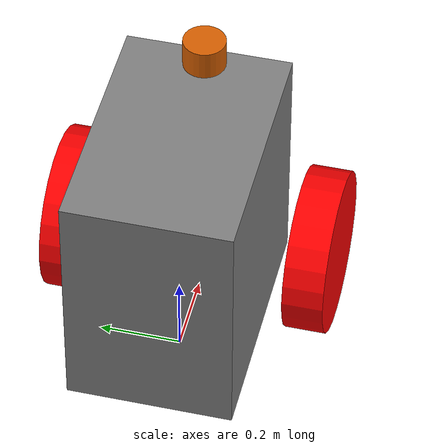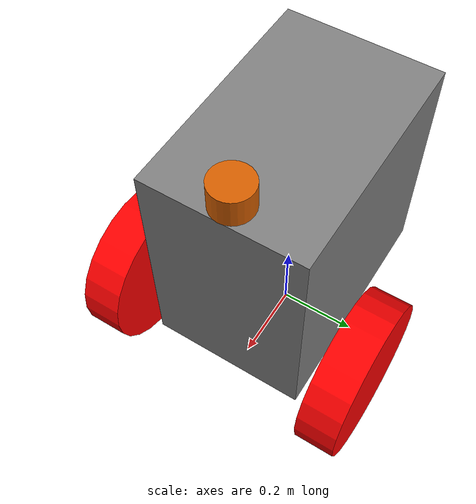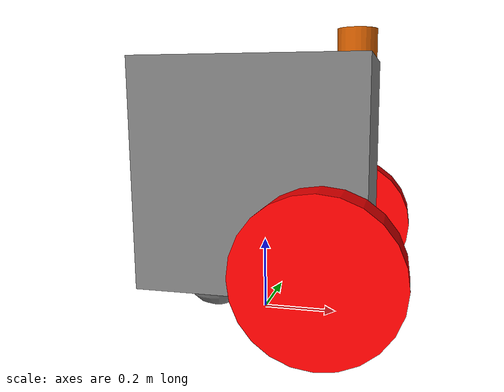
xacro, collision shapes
<?xml version="1.0"?>
<robot xmlns:xacro="http://www.ros.org/wiki/xacro" name="dtw_robot">
	<include filename="$(find soma_mse)/xacro/movebase_macro.xacro" />
	<include filename="$(find velodyne_description)/urdf/VLP-16.urdf.xacro" />
	<!-- empty link -->
	<link name="base_link" />
	<body_macro parent="base_link" />
	<wheel_macro prefix="left_wheel" parent="base_link" xyz="0.2 0.3 0.2" />
	<wheel_macro prefix="right_wheel" parent="base_link" xyz="0.2 -0.3 0.2" />
	<VLP-16 parent="base_link" name="velodyne" topic="/velodyne_points">
		<origin parent="base_link" xyz="0.25 0.0 0.7" rpy="0.0 0.0 0.0" />
	</VLP-16>
	<gazebo>
		<plugin name="gazebo_ros_control" filename="libgazebo_ros_control.so">
			<robotNamespace>
				/
			</robotNamespace>
			<robotSimType>
				gazebo_ros_control/DefaultRobotHWSim
				<robotSimType>
					<legacyModeNS>
						true
					</legacyModeNS>
				</robotSimType>
			</robotSimType>
		</plugin>
	</gazebo>
</robot>

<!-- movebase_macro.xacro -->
<robot xmlns:xacro="http://www.ros.org/wiki/xacro" name="dtw_robot">

	<!-- Materials -->
	<material name="gray">
		<color rgba="0.5 0.5 0.5 2.5" />
	</material>
	<material name="red">
		<color rgba="1.0 0.0 0.0 2.5" />
	</material>

	<!-- Wheel macro -->
	<macro name="wheel_macro" params="parent prefix xyz">

		<!-- General properties used for inertia computation -->
		<property name="mass" value="0.5" />
		<property name="radius" value="0.2" />
		<property name="length" value="0.1" />

		<!-- Joint -->
		<joint name="${prefix}_joint" type="continuous">
			<origin xyz="${xyz}" rpy="${radians(-90)} 0.0 0.0" />
			<parent link="${parent}" />
			<child link="${prefix}_link" />
			<axis xyz="0 0 1" />
			<limit velocity="12.0" effort="0.4" />
			<dynamics damping="0.1" />
		</joint>

		<!-- Transmission -->
		<transmission name="${prefix}_trans">
			<type>
				transmission_interface/SimpleTransmission
			</type>

			<!-- Joint -->
			<joint name="${prefix}_joint">
				<hardwareInterface>
					hardware_interface/VelocityJointInterface
				</hardwareInterface>
			</joint>

			<!-- Actuator -->
			<actuator name="${prefix}_motor">
				<hardwareInterface>
					hardware_interface/VelocityJointInterface
				</hardwareInterface>
				<mechanismReduction>
					1
				</mechanismReduction>
			</actuator>

		</transmission>
		<!-- END transmission -->

		<!-- Link -->
		<link name="${prefix}_link">

			<!-- Inertia part -->
			<inertial>
				<origin xyz="0.0 0.0 0.0" rpy="0.0 0.0 0.0" />
				<mass value="${mass}" />

				<!-- Inertia matrix of a cylinder -->
				<inertia ixx="${mass / 12 * (3 * radius ** 2 + length ** 2)}" ixy="0.0"
						 ixz="0.0" iyy="${mass / 12 * (3 * radius ** 2 + length ** 2)}"
						 iyz="0.0" izz="${mass / 2 * radius ** 2}" />
				<!-- Old values: ixx = iyy = izz = 0.0001 -->
			</inertial>

			<!-- Visual part -->
			<visual>
				<geometry>
					<cylinder radius="${radius}" length="${length}" />
				</geometry>
				<material name="red" />
			</visual>

			<!-- Collision part -->
			<collision>
				<geometry>
					<cylinder radius="${radius}" length="${length}" />
				</geometry>
			</collision>

		</link>
		<!-- END link -->

		<!-- Gazebo additional parameters -->
		<gazebo reference="${prefix}_link">
			<material>
				Gazebo/Red
			</material>
			<mu1 value="2.5" />
			<mu2 value="2.5" />
			<kp value="50000" />
			<kd value="10" />
		</gazebo>

	</macro>
	<!-- END wheel macro -->

	<!-- Body and ball macro -->
	<macro name="body_macro" params="parent">

		<!-- General properties used for inertia computation -->
		<property name="mass" value="1.0" />
		<property name="width" value="0.6" />
		<property name="depth" value="0.40" />
		<property name="height" value="0.6" />

		<!-- Body joint -->
		<joint name="body_joint" type="fixed">
			<parent link="${parent}" />
			<child link="body_link" />
			<origin xyz="0 0 0.4" rpy="0.0 0.0 0.0" />
		</joint>

		<!-- Body link -->
		<link name="body_link">

			<!-- Inertial part -->
			<inertial>
				<origin xyz="0.0 0.0 0.0" rpy="0.0 0.0 0.0" />
				<mass value="${mass}" />

				<!-- Inertia matrix of a parallelepiped -->
				<inertia ixx="${mass / 12 * (depth ** 2 + height ** 2)}" ixy="0.0"
						 ixz="0.0" iyy="${mass / 12 * (width ** 2 + height ** 2)}"
						 iyz="0.0" izz="${mass / 12 * (width ** 2 + depth ** 2)}" />
				<!-- Old values: ixx = iyy = izz = 0.001 -->
			</inertial>

			<!-- Visual part -->
			<visual>
				<origin xyz="0.0 0.0 0.0" rpy="0.0 0.0 0.0" />
				<geometry>
					<box size="${width} ${depth} ${height}" />
				</geometry>
				<material name="gray" />
			</visual>

			<!-- Collision part -->
			<collision>
				<origin xyz="0.0 0.0 0.0" rpy="0.0 0.0 0.0" />
				<geometry>
					<box size="${width} ${depth} ${height}" />
				</geometry>
			</collision>

		</link>
		<!-- END link -->

		<!-- Gazebo additional parameters -->
		<gazebo reference="body_link">
			<material>
				Gazebo/Gray
			</material>
		</gazebo>

		<!-- Ball joint -->
		<joint name="ball_joint" type="fixed">
			<parent link="${parent}" />
			<child link="ball_link" />
			<origin xyz="-0.14 0 0.1" rpy="0.0 0.0 0.0" />
		</joint>

		<!-- Ball link -->
		<link name="ball_link">

			<!-- Visual part -->
			<visual>
				<origin xyz="0.0 0.0 0.0" rpy="0.0 0.0 0.0" />
				<geometry>
					<sphere radius="0.1" />
				</geometry>
				<material name="gray" />
			</visual>

			<!-- Collision part -->
			<collision>
				<origin xyz="0.0 0.0 0.0" rpy="0.0 0.0 0.0" />
				<geometry>
					<sphere radius="0.1" />
				</geometry>
				<material name="gray" />
			</collision>

		</link>
		<!-- END link -->

		<!-- Gazebo aditionnal parameters -->
		<gazebo reference="ball_link">
			<material>
				Gazebo/Gray
			</material>
			<mu1 value="0.5" />
			<mu2 value="0.5" />
		</gazebo>

	</macro>
	<!-- END body and ball macro -->

</robot>

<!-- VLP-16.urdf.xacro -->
<robot xmlns:xacro="http://www.ros.org/wiki/xacro" name="VLP-16">
  <xacro:property name="M_PI" value="3.1415926535897931" />
  <xacro:macro name="VLP-16" params="*origin is_sim:=true parent:=base_link name:=velodyne tf_prefix:='' topic:=/velodyne_points organize_cloud:=false hz:=10 lasers:=16 samples:=1875 collision_range:=0.3 min_range:=0.0 max_range:=100.0 noise:=0.008 min_angle:=-${M_PI} max_angle:=${M_PI} gpu:=false">

    <joint name="${name}_base_mount_joint" type="fixed">
      <xacro:insert_block name="origin" />
      <parent link="${parent}"/>
      <child link="${name}_base_link"/>
    </joint>

    <link name="${name}_base_link">
      <inertial>
        <mass value="0.83"/>
        <origin xyz="0 0 0.03585"/>
        <inertia ixx="${(0.83 * (3.0*0.0516*0.0516 + 0.0717*0.0717)) / 12.0}" ixy="0" ixz="0"
          iyy="${(0.83 * (3.0*0.0516*0.0516 + 0.0717*0.0717)) / 12.0}" iyz="0"
          izz="${0.5 * 0.83 * (0.0516*0.0516)}"/>
      </inertial>
      <visual>
        <geometry>
          <mesh filename="package://velodyne_description/meshes/VLP16_base_1.dae" />
        </geometry>
      </visual>
      <visual>
        <geometry>
          <mesh filename="package://velodyne_description/meshes/VLP16_base_2.dae" />
        </geometry>
      </visual>
      <collision>
        <origin rpy="0 0 0" xyz="0 0 0.03585"/>
        <geometry>
          <cylinder radius="0.0516" length="0.0717"/>
        </geometry>
      </collision>
    </link>

    <joint name="${name}_base_scan_joint" type="fixed" >
      <origin xyz="0 0 0.0377" rpy="0 0 0" />
      <parent link="${name}_base_link" />
      <child link="${name}"/>
    </joint>

    <link name="${name}">
      <inertial>
        <mass value="0.01"/>
        <origin xyz="0 0 0"/>
        <inertia ixx="1e-7" ixy="0" ixz="0" iyy="1e-7" iyz="0" izz="1e-7"/>
      </inertial>
      <visual>
        <origin xyz="0 0 -0.0377" />
        <geometry>
          <mesh filename="package://velodyne_description/meshes/VLP16_scan.dae" />
        </geometry>
      </visual>
      <collision>
        <geometry>
          <sphere radius="0"/>
        </geometry>
      </collision>
    </link>

    <!-- Gazebo requires the velodyne_gazebo_plugins package -->
    <xacro:if value="${is_sim}">
        <gazebo reference="${name}">
            <xacro:if value="${gpu}">
                <sensor type="gpu_ray" name="${name}-VLP16">
                <pose>0 0 0 0 0 0</pose>
                <visualize>false</visualize>
                <update_rate>${hz}</update_rate>
                <ray>
                    <scan>
                    <horizontal>
                        <samples>${samples}</samples>
                        <resolution>1</resolution>
                        <min_angle>${min_angle}</min_angle>
                        <max_angle>${max_angle}</max_angle>
                    </horizontal>
                    <vertical>
                        <samples>${lasers}</samples>
                        <resolution>1</resolution>
                        <min_angle>-${15.0*M_PI/180.0}</min_angle>
                        <max_angle> ${15.0*M_PI/180.0}</max_angle>
                    </vertical>
                    </scan>
                    <range>
                    <min>${collision_range}</min>
                    <max>${max_range+1}</max>
                    <resolution>0.001</resolution>
                    </range>
                    <noise>
                    <type>gaussian</type>
                    <mean>0.0</mean>
                    <stddev>0.0</stddev>
                    </noise>
                </ray>
                <plugin name="gazebo_ros_laser_controller" filename="libgazebo_ros_velodyne_laser.so">
                    <ros>
                    <namespace>/${name}</namespace>
                    <remapping>~/out:=${topic}</remapping>
                    </ros>
                    <tf_prefix>${tf_prefix}</tf_prefix>
                    <frame_name>${name}</frame_name>
                    <organize_cloud>${organize_cloud}</organize_cloud>
                    <min_range>${min_range}</min_range>
                    <max_range>${max_range}</max_range>
                    <gaussian_noise>${noise}</gaussian_noise>
                </plugin>
                </sensor>
            </xacro:if>
            <xacro:unless value="${gpu}">
                <sensor type="ray" name="${name}-VLP16">
                <pose>0 0 0 0 0 0</pose>
                <visualize>false</visualize>
                <update_rate>${hz}</update_rate>
                <ray>
                    <scan>
                    <horizontal>
                        <samples>${samples}</samples>
                        <resolution>1</resolution>
                        <min_angle>${min_angle}</min_angle>
                        <max_angle>${max_angle}</max_angle>
                    </horizontal>
                    <vertical>
                        <samples>${lasers}</samples>
                        <resolution>1</resolution>
                        <min_angle>-${15.0*M_PI/180.0}</min_angle>
                        <max_angle> ${15.0*M_PI/180.0}</max_angle>
                    </vertical>
                    </scan>
                    <range>
                    <min>${collision_range}</min>
                    <max>${max_range+1}</max>
                    <resolution>0.001</resolution>
                    </range>
                    <noise>
                    <type>gaussian</type>
                    <mean>0.0</mean>
                    <stddev>0.0</stddev>
                    </noise>
                </ray>
                <plugin name="gazebo_ros_laser_controller" filename="libgazebo_ros_velodyne_laser.so">
                    <ros>
                    <namespace>/${name}</namespace>
                    <remapping>~/out:=${topic}</remapping>
                    </ros>
                    <tf_prefix>${tf_prefix}</tf_prefix>
                    <frame_name>${name}</frame_name>
                    <organize_cloud>${organize_cloud}</organize_cloud>
                    <min_range>${min_range}</min_range>
                    <max_range>${max_range}</max_range>
                    <gaussian_noise>${noise}</gaussian_noise>
                </plugin>
                </sensor>
            </xacro:unless>
        </gazebo>
    </xacro:if>

  </xacro:macro>
</robot>
